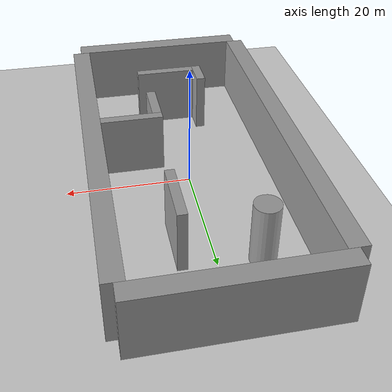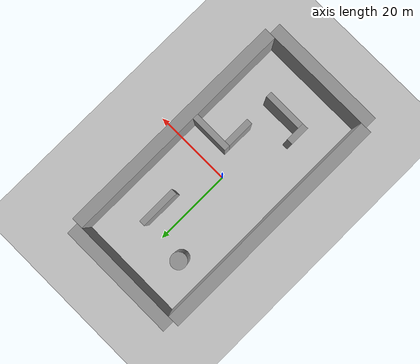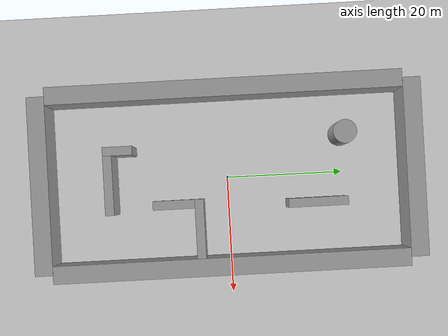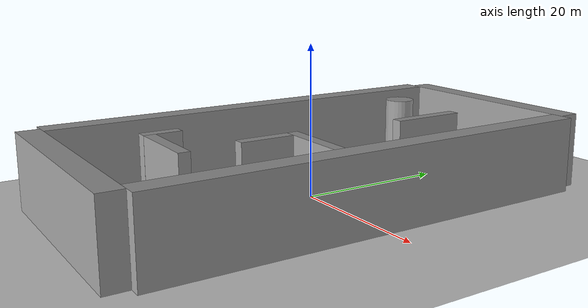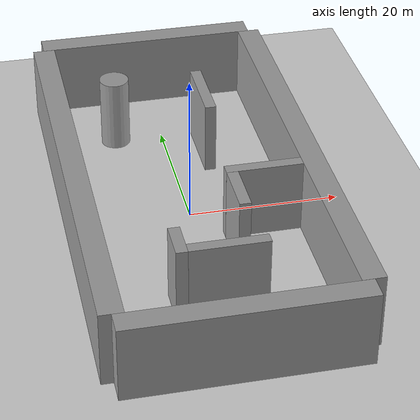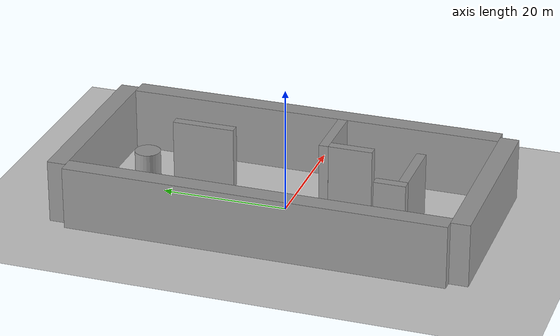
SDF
<sdf version="1.6">
 <world name="vrc_task_1">
  <scene><ambient>0.4 0.4 0.4 1</ambient><background>0.7 0.7 0.7 1</background><shadows>1</shadows></scene>
  <physics name="default_physics" default="0" type="ode">
   <ode>
    <solver>
     <type>quick</type>
     <iters>10</iters>
     <sor>1</sor>
     <use_dynamic_moi_rescaling>0</use_dynamic_moi_rescaling>
    </solver>
    <constraints>
     <cfm>0</cfm>
     <erp>0.2</erp>
     <contact_max_correcting_vel>100</contact_max_correcting_vel>
     <contact_surface_layer>0.001</contact_surface_layer>
    </constraints>
   </ode>
   <max_step_size>0.004</max_step_size>
   <real_time_factor>1</real_time_factor>
   <real_time_update_rate>250</real_time_update_rate>
  </physics>
  <light name="sun" type="directional">
   <pose>0 0 10 0 -0 0</pose>
   <diffuse>0.8 0.8 0.8 1</diffuse>
   <specular>0.2 0.2 0.2 1</specular>
   <attenuation>
    <range>1000</range>
    <constant>0.9</constant>
    <linear>0.01</linear>
    <quadratic>0.001</quadratic>
   </attenuation>
   <direction>-0.5 0.1 -0.9</direction>
  </light>
  <gravity>0 0 -9.8066</gravity>
  <magnetic_field>6e-06 2.3e-05 -4.2e-05</magnetic_field>
  <atmosphere type="adiabatic"/>
  <audio><device>default</device></audio>
  <spherical_coordinates>
   <surface_model>EARTH_WGS84</surface_model>
   <latitude_deg>0</latitude_deg>
   <longitude_deg>0</longitude_deg>
   <elevation>0</elevation>
   <heading_deg>0</heading_deg>
  </spherical_coordinates>
  <model name="ground_plane">
   <static>1</static>
   <link name="link">
    <collision name="collision">
     <geometry><plane><normal>0 0 1</normal><size>100 100</size></plane></geometry>
     <surface><friction><ode><mu>100</mu><mu2>50</mu2></ode></friction></surface>
    </collision>
    <visual name="visual">
     <cast_shadows>0</cast_shadows>
     <geometry><plane><normal>0 0 1</normal><size>100 100</size></plane></geometry>
     <material>
      <script><uri>file://media/materials/scripts/gazebo.material</uri><name>Gazebo/Grey</name></script>
     </material>
    </visual>
   </link>
   <pose>2.41675 -0.571224 0 0 -0 0</pose>
  </model>
  <model name="Box_2">
   <link name="link_0">
    <inertial>
     <mass>1800</mass>
     <inertia><ixx>16350</ixx><ixy>0</ixy><ixz>0</ixz><iyy>555000</iyy><iyz>0</iyz><izz>541350</izz></inertia>
    </inertial>
    <pose>15 -0 -0 0 -0 1.57</pose>
    <visual name="visual">
     <geometry><box><size>60 3 10</size></box></geometry>
     <material>
      <lighting>1</lighting>
      <script><uri>file://media/materials/scripts/gazebo.material</uri><name>Gazebo/Grey</name></script>
      <shader type="vertex"><normal_map>__default__</normal_map></shader>
      <ambient>0.3 0.3 0.3 1</ambient>
      <diffuse>0.7 0.7 0.7 1</diffuse>
      <specular>0.01 0.01 0.01 1</specular>
      <emissive>0 0 0 1</emissive>
     </material>
    </visual>
    <collision name="collision">
     <geometry><box><size>60 3 10</size></box></geometry>
     <surface>
      <friction>
       <ode><mu>1</mu><mu2>1</mu2><fdir1>0 0 0</fdir1><slip1>0</slip1><slip2>0</slip2></ode>
       <torsional>
        <coefficient>1</coefficient>
        <patch_radius>0</patch_radius>
        <surface_radius>0</surface_radius>
        <use_patch_radius>1</use_patch_radius>
        <ode><slip>0</slip></ode>
       </torsional>
      </friction>
      <bounce><restitution_coefficient>0</restitution_coefficient><threshold>1e+06</threshold></bounce>
      <contact>
       <collide_without_contact>0</collide_without_contact>
       <collide_without_contact_bitmask>1</collide_without_contact_bitmask>
       <collide_bitmask>1</collide_bitmask>
       <ode>
        <soft_cfm>0</soft_cfm>
        <soft_erp>0.2</soft_erp>
        <kp>1e+13</kp>
        <kd>1</kd>
        <max_vel>0.01</max_vel>
        <min_depth>0</min_depth>
       </ode>
       <bullet>
        <split_impulse>1</split_impulse>
        <split_impulse_penetration_threshold>-0.01</split_impulse_penetration_threshold>
        <soft_cfm>0</soft_cfm>
        <soft_erp>0.2</soft_erp>
        <kp>1e+13</kp>
        <kd>1</kd>
       </bullet>
      </contact>
     </surface>
    </collision>
   </link>
   <link name="link_0_clone">
    <inertial>
     <mass>1800</mass>
     <inertia><ixx>16350</ixx><ixy>0</ixy><ixz>0</ixz><iyy>555000</iyy><iyz>0</iyz><izz>541350</izz></inertia>
    </inertial>
    <pose>-15 -0 0 0 -0 1.57</pose>
    <visual name="visual">
     <geometry><box><size>60 3 10</size></box></geometry>
     <material>
      <lighting>1</lighting>
      <script><uri>file://media/materials/scripts/gazebo.material</uri><name>Gazebo/Grey</name></script>
      <shader type="vertex"><normal_map>__default__</normal_map></shader>
      <ambient>0.3 0.3 0.3 1</ambient>
      <diffuse>0.7 0.7 0.7 1</diffuse>
      <specular>0.01 0.01 0.01 1</specular>
      <emissive>0 0 0 1</emissive>
     </material>
    </visual>
    <collision name="collision">
     <geometry><box><size>60 3 10</size></box></geometry>
     <surface>
      <friction>
       <ode><mu>1</mu><mu2>1</mu2><fdir1>0 0 0</fdir1><slip1>0</slip1><slip2>0</slip2></ode>
       <torsional>
        <coefficient>1</coefficient>
        <patch_radius>0</patch_radius>
        <surface_radius>0</surface_radius>
        <use_patch_radius>1</use_patch_radius>
        <ode><slip>0</slip></ode>
       </torsional>
      </friction>
      <bounce><restitution_coefficient>0</restitution_coefficient><threshold>1e+06</threshold></bounce>
      <contact>
       <collide_without_contact>0</collide_without_contact>
       <collide_without_contact_bitmask>1</collide_without_contact_bitmask>
       <collide_bitmask>1</collide_bitmask>
       <ode>
        <soft_cfm>0</soft_cfm>
        <soft_erp>0.2</soft_erp>
        <kp>1e+13</kp>
        <kd>1</kd>
        <max_vel>0.01</max_vel>
        <min_depth>0</min_depth>
       </ode>
       <bullet>
        <split_impulse>1</split_impulse>
        <split_impulse_penetration_threshold>-0.01</split_impulse_penetration_threshold>
        <soft_cfm>0</soft_cfm>
        <soft_erp>0.2</soft_erp>
        <kp>1e+13</kp>
        <kd>1</kd>
       </bullet>
      </contact>
     </surface>
    </collision>
   </link>
   <link name="link_1">
    <inertial>
     <mass>900</mass>
     <inertia><ixx>75000</ixx><ixy>0</ixy><ixz>0</ixz><iyy>8175</iyy><iyz>0</iyz><izz>68175</izz></inertia>
    </inertial>
    <pose>-0 -31.5 0 0 -0 1.57</pose>
    <visual name="visual">
     <geometry><box><size>3 30 10</size></box></geometry>
     <material>
      <lighting>1</lighting>
      <script><uri>file://media/materials/scripts/gazebo.material</uri><name>Gazebo/Grey</name></script>
      <shader type="vertex"><normal_map>__default__</normal_map></shader>
      <ambient>0.3 0.3 0.3 1</ambient>
      <diffuse>0.7 0.7 0.7 1</diffuse>
      <specular>0.01 0.01 0.01 1</specular>
      <emissive>0 0 0 1</emissive>
     </material>
    </visual>
    <collision name="collision">
     <geometry><box><size>3 30 10</size></box></geometry>
     <surface>
      <friction>
       <ode><mu>1</mu><mu2>1</mu2><fdir1>0 0 0</fdir1><slip1>0</slip1><slip2>0</slip2></ode>
       <torsional>
        <coefficient>1</coefficient>
        <patch_radius>0</patch_radius>
        <surface_radius>0</surface_radius>
        <use_patch_radius>1</use_patch_radius>
        <ode><slip>0</slip></ode>
       </torsional>
      </friction>
      <bounce><restitution_coefficient>0</restitution_coefficient><threshold>1e+06</threshold></bounce>
      <contact>
       <collide_without_contact>0</collide_without_contact>
       <collide_without_contact_bitmask>1</collide_without_contact_bitmask>
       <collide_bitmask>1</collide_bitmask>
       <ode>
        <soft_cfm>0</soft_cfm>
        <soft_erp>0.2</soft_erp>
        <kp>1e+13</kp>
        <kd>1</kd>
        <max_vel>0.01</max_vel>
        <min_depth>0</min_depth>
       </ode>
       <bullet>
        <split_impulse>1</split_impulse>
        <split_impulse_penetration_threshold>-0.01</split_impulse_penetration_threshold>
        <soft_cfm>0</soft_cfm>
        <soft_erp>0.2</soft_erp>
        <kp>1e+13</kp>
        <kd>1</kd>
       </bullet>
      </contact>
     </surface>
    </collision>
   </link>
   <link name="link_1_clone">
    <inertial>
     <mass>900</mass>
     <inertia><ixx>75000</ixx><ixy>0</ixy><ixz>0</ixz><iyy>8175</iyy><iyz>0</iyz><izz>68175</izz></inertia>
    </inertial>
    <pose>0 31.5 -0 0 -0 1.57</pose>
    <visual name="visual">
     <geometry><box><size>3 30 10</size></box></geometry>
     <material>
      <lighting>1</lighting>
      <script><uri>file://media/materials/scripts/gazebo.material</uri><name>Gazebo/Grey</name></script>
      <shader type="vertex"><normal_map>__default__</normal_map></shader>
      <ambient>0.3 0.3 0.3 1</ambient>
      <diffuse>0.7 0.7 0.7 1</diffuse>
      <specular>0.01 0.01 0.01 1</specular>
      <emissive>0 0 0 1</emissive>
     </material>
    </visual>
    <collision name="collision">
     <geometry><box><size>3 30 10</size></box></geometry>
     <surface>
      <friction>
       <ode><mu>1</mu><mu2>1</mu2><fdir1>0 0 0</fdir1><slip1>0</slip1><slip2>0</slip2></ode>
       <torsional>
        <coefficient>1</coefficient>
        <patch_radius>0</patch_radius>
        <surface_radius>0</surface_radius>
        <use_patch_radius>1</use_patch_radius>
        <ode><slip>0</slip></ode>
       </torsional>
      </friction>
      <bounce><restitution_coefficient>0</restitution_coefficient><threshold>1e+06</threshold></bounce>
      <contact>
       <collide_without_contact>0</collide_without_contact>
       <collide_without_contact_bitmask>1</collide_without_contact_bitmask>
       <collide_bitmask>1</collide_bitmask>
       <ode>
        <soft_cfm>0</soft_cfm>
        <soft_erp>0.2</soft_erp>
        <kp>1e+13</kp>
        <kd>1</kd>
        <max_vel>0.01</max_vel>
        <min_depth>0</min_depth>
       </ode>
       <bullet>
        <split_impulse>1</split_impulse>
        <split_impulse_penetration_threshold>-0.01</split_impulse_penetration_threshold>
        <soft_cfm>0</soft_cfm>
        <soft_erp>0.2</soft_erp>
        <kp>1e+13</kp>
        <kd>1</kd>
       </bullet>
      </contact>
     </surface>
    </collision>
   </link>
   <link name="link_2">
    <inertial>
     <mass>150.796</mass>
     <inertia><ixx>1407.43</ixx><ixy>0</ixy><ixz>0</ixz><iyy>1407.43</iyy><iyz>0</iyz><izz>301.593</izz></inertia>
    </inertial>
    <pose>-6.5 20 0 3e-06 -0 3e-06</pose>
    <visual name="visual">
     <geometry><cylinder><radius>2</radius><length>10</length></cylinder></geometry>
     <material>
      <lighting>1</lighting>
      <script><uri>file://media/materials/scripts/gazebo.material</uri><name>Gazebo/Grey</name></script>
      <shader type="vertex"><normal_map>__default__</normal_map></shader>
      <ambient>0.3 0.3 0.3 1</ambient>
      <diffuse>0.7 0.7 0.7 1</diffuse>
      <specular>0.01 0.01 0.01 1</specular>
      <emissive>0 0 0 1</emissive>
     </material>
    </visual>
    <collision name="collision">
     <geometry><cylinder><radius>2</radius><length>10</length></cylinder></geometry>
     <surface>
      <friction>
       <ode><mu>1</mu><mu2>1</mu2><fdir1>0 0 0</fdir1><slip1>0</slip1><slip2>0</slip2></ode>
       <torsional>
        <coefficient>1</coefficient>
        <patch_radius>0</patch_radius>
        <surface_radius>0</surface_radius>
        <use_patch_radius>1</use_patch_radius>
        <ode><slip>0</slip></ode>
       </torsional>
      </friction>
      <bounce><restitution_coefficient>0</restitution_coefficient><threshold>1e+06</threshold></bounce>
      <contact>
       <collide_without_contact>0</collide_without_contact>
       <collide_without_contact_bitmask>1</collide_without_contact_bitmask>
       <collide_bitmask>1</collide_bitmask>
       <ode>
        <soft_cfm>0</soft_cfm>
        <soft_erp>0.2</soft_erp>
        <kp>1e+13</kp>
        <kd>1</kd>
        <max_vel>0.01</max_vel>
        <min_depth>0</min_depth>
       </ode>
       <bullet>
        <split_impulse>1</split_impulse>
        <split_impulse_penetration_threshold>-0.01</split_impulse_penetration_threshold>
        <soft_cfm>0</soft_cfm>
        <soft_erp>0.2</soft_erp>
        <kp>1e+13</kp>
        <kd>1</kd>
       </bullet>
      </contact>
     </surface>
    </collision>
   </link>
   <link name="link_3">
    <inertial>
     <mass>150</mass>
     <inertia><ixx>1278.12</ixx><ixy>0</ixy><ixz>0</ixz><iyy>2500</iyy><iyz>0</iyz><izz>1278.12</izz></inertia>
    </inertial>
    <pose>5 15 -0 3e-06 -0 1.57</pose>
    <visual name="visual">
     <geometry><box><size>10 1.5 10</size></box></geometry>
     <material>
      <lighting>1</lighting>
      <script><uri>file://media/materials/scripts/gazebo.material</uri><name>Gazebo/Grey</name></script>
      <shader type="vertex"><normal_map>__default__</normal_map></shader>
      <ambient>0.3 0.3 0.3 1</ambient>
      <diffuse>0.7 0.7 0.7 1</diffuse>
      <specular>0.01 0.01 0.01 1</specular>
      <emissive>0 0 0 1</emissive>
     </material>
    </visual>
    <collision name="collision">
     <geometry><box><size>10 1.5 10</size></box></geometry>
     <surface>
      <friction>
       <ode><mu>1</mu><mu2>1</mu2><fdir1>0 0 0</fdir1><slip1>0</slip1><slip2>0</slip2></ode>
       <torsional>
        <coefficient>1</coefficient>
        <patch_radius>0</patch_radius>
        <surface_radius>0</surface_radius>
        <use_patch_radius>1</use_patch_radius>
        <ode><slip>0</slip></ode>
       </torsional>
      </friction>
      <bounce><restitution_coefficient>0</restitution_coefficient><threshold>1e+06</threshold></bounce>
      <contact>
       <collide_without_contact>0</collide_without_contact>
       <collide_without_contact_bitmask>1</collide_without_contact_bitmask>
       <collide_bitmask>1</collide_bitmask>
       <ode>
        <soft_cfm>0</soft_cfm>
        <soft_erp>0.2</soft_erp>
        <kp>1e+13</kp>
        <kd>1</kd>
        <max_vel>0.01</max_vel>
        <min_depth>0</min_depth>
       </ode>
       <bullet>
        <split_impulse>1</split_impulse>
        <split_impulse_penetration_threshold>-0.01</split_impulse_penetration_threshold>
        <soft_cfm>0</soft_cfm>
        <soft_erp>0.2</soft_erp>
        <kp>1e+13</kp>
        <kd>1</kd>
       </bullet>
      </contact>
     </surface>
    </collision>
   </link>
   <link name="link_4">
    <inertial>
     <mass>150</mass>
     <inertia><ixx>2500</ixx><ixy>0</ixy><ixz>0</ixz><iyy>1278.12</iyy><iyz>0</iyz><izz>1278.12</izz></inertia>
    </inertial>
    <pose>8.5 -5 0 0 -0 1.57</pose>
    <visual name="visual">
     <geometry><box><size>1.5 10 10</size></box></geometry>
     <material>
      <lighting>1</lighting>
      <script><uri>file://media/materials/scripts/gazebo.material</uri><name>Gazebo/Grey</name></script>
      <shader type="vertex"><normal_map>__default__</normal_map></shader>
      <ambient>0.3 0.3 0.3 1</ambient>
      <diffuse>0.7 0.7 0.7 1</diffuse>
      <specular>0.01 0.01 0.01 1</specular>
      <emissive>0 0 0 1</emissive>
     </material>
    </visual>
    <collision name="collision">
     <geometry><box><size>1.5 10 10</size></box></geometry>
     <surface>
      <friction>
       <ode><mu>1</mu><mu2>1</mu2><fdir1>0 0 0</fdir1><slip1>0</slip1><slip2>0</slip2></ode>
       <torsional>
        <coefficient>1</coefficient>
        <patch_radius>0</patch_radius>
        <surface_radius>0</surface_radius>
        <use_patch_radius>1</use_patch_radius>
        <ode><slip>0</slip></ode>
       </torsional>
      </friction>
      <bounce><restitution_coefficient>0</restitution_coefficient><threshold>1e+06</threshold></bounce>
      <contact>
       <collide_without_contact>0</collide_without_contact>
       <collide_without_contact_bitmask>1</collide_without_contact_bitmask>
       <collide_bitmask>1</collide_bitmask>
       <ode>
        <soft_cfm>0</soft_cfm>
        <soft_erp>0.2</soft_erp>
        <kp>1e+13</kp>
        <kd>1</kd>
        <max_vel>0.01</max_vel>
        <min_depth>0</min_depth>
       </ode>
       <bullet>
        <split_impulse>1</split_impulse>
        <split_impulse_penetration_threshold>-0.01</split_impulse_penetration_threshold>
        <soft_cfm>0</soft_cfm>
        <soft_erp>0.2</soft_erp>
        <kp>1e+13</kp>
        <kd>1</kd>
       </bullet>
      </contact>
     </surface>
    </collision>
   </link>
   <link name="link_6">
    <inertial>
     <mass>105</mass>
     <inertia><ixx>894.688</ixx><ixy>0</ixy><ixz>0</ixz><iyy>1303.75</iyy><iyz>0</iyz><izz>448.438</izz></inertia>
    </inertial>
    <pose>4.25 -9.25 0 3e-06 -0 1.57</pose>
    <visual name="visual">
     <geometry><box><size>7 1.5 10</size></box></geometry>
     <material>
      <lighting>1</lighting>
      <script><uri>file://media/materials/scripts/gazebo.material</uri><name>Gazebo/Grey</name></script>
      <shader type="vertex"><normal_map>__default__</normal_map></shader>
      <ambient>0.3 0.3 0.3 1</ambient>
      <diffuse>0.7 0.7 0.7 1</diffuse>
      <specular>0.01 0.01 0.01 1</specular>
      <emissive>0 0 0 1</emissive>
     </material>
    </visual>
    <collision name="collision">
     <geometry><box><size>7 1.5 10</size></box></geometry>
     <surface>
      <friction>
       <ode><mu>1</mu><mu2>1</mu2><fdir1>0 0 0</fdir1><slip1>0</slip1><slip2>0</slip2></ode>
       <torsional>
        <coefficient>1</coefficient>
        <patch_radius>0</patch_radius>
        <surface_radius>0</surface_radius>
        <use_patch_radius>1</use_patch_radius>
        <ode><slip>0</slip></ode>
       </torsional>
      </friction>
      <bounce><restitution_coefficient>0</restitution_coefficient><threshold>1e+06</threshold></bounce>
      <contact>
       <collide_without_contact>0</collide_without_contact>
       <collide_without_contact_bitmask>1</collide_without_contact_bitmask>
       <collide_bitmask>1</collide_bitmask>
       <ode>
        <soft_cfm>0</soft_cfm>
        <soft_erp>0.2</soft_erp>
        <kp>1e+13</kp>
        <kd>1</kd>
        <max_vel>0.01</max_vel>
        <min_depth>0</min_depth>
       </ode>
       <bullet>
        <split_impulse>1</split_impulse>
        <split_impulse_penetration_threshold>-0.01</split_impulse_penetration_threshold>
        <soft_cfm>0</soft_cfm>
        <soft_erp>0.2</soft_erp>
        <kp>1e+13</kp>
        <kd>1</kd>
       </bullet>
      </contact>
     </surface>
    </collision>
   </link>
   <link name="link_7">
    <inertial>
     <mass>150</mass>
     <inertia><ixx>2500</ixx><ixy>0</ixy><ixz>0</ixz><iyy>1278.12</iyy><iyz>0</iyz><izz>1278.12</izz></inertia>
    </inertial>
    <pose>0.500001 -20 -0 3e-06 -0 1.57</pose>
    <visual name="visual">
     <geometry><box><size>1.5 10 10</size></box></geometry>
     <material>
      <lighting>1</lighting>
      <script><uri>file://media/materials/scripts/gazebo.material</uri><name>Gazebo/Grey</name></script>
      <shader type="vertex"><normal_map>__default__</normal_map></shader>
      <ambient>0.3 0.3 0.3 1</ambient>
      <diffuse>0.7 0.7 0.7 1</diffuse>
      <specular>0.01 0.01 0.01 1</specular>
      <emissive>0 0 0 1</emissive>
     </material>
    </visual>
    <collision name="collision">
     <geometry><box><size>1.5 10 10</size></box></geometry>
     <surface>
      <friction>
       <ode><mu>1</mu><mu2>1</mu2><fdir1>0 0 0</fdir1><slip1>0</slip1><slip2>0</slip2></ode>
       <torsional>
        <coefficient>1</coefficient>
        <patch_radius>0</patch_radius>
        <surface_radius>0</surface_radius>
        <use_patch_radius>1</use_patch_radius>
        <ode><slip>0</slip></ode>
       </torsional>
      </friction>
      <bounce><restitution_coefficient>0</restitution_coefficient><threshold>1e+06</threshold></bounce>
      <contact>
       <collide_without_contact>0</collide_without_contact>
       <collide_without_contact_bitmask>1</collide_without_contact_bitmask>
       <collide_bitmask>1</collide_bitmask>
       <ode>
        <soft_cfm>0</soft_cfm>
        <soft_erp>0.2</soft_erp>
        <kp>1e+13</kp>
        <kd>1</kd>
        <max_vel>0.01</max_vel>
        <min_depth>0</min_depth>
       </ode>
       <bullet>
        <split_impulse>1</split_impulse>
        <split_impulse_penetration_threshold>-0.01</split_impulse_penetration_threshold>
        <soft_cfm>0</soft_cfm>
        <soft_erp>0.2</soft_erp>
        <kp>1e+13</kp>
        <kd>1</kd>
       </bullet>
      </contact>
     </surface>
    </collision>
   </link>
   <link name="link_8">
    <inertial>
     <mass>75</mass>
     <inertia><ixx>639.062</ixx><ixy>0</ixy><ixz>0</ixz><iyy>781.25</iyy><iyz>0</iyz><izz>170.312</izz></inertia>
    </inertial>
    <pose>-5.25 -18.25 -0 0 -0 1.57</pose>
    <visual name="visual">
     <geometry><box><size>5 1.5 10</size></box></geometry>
     <material>
      <lighting>1</lighting>
      <script><uri>file://media/materials/scripts/gazebo.material</uri><name>Gazebo/Grey</name></script>
      <shader type="vertex"><normal_map>__default__</normal_map></shader>
      <ambient>0.3 0.3 0.3 1</ambient>
      <diffuse>0.7 0.7 0.7 1</diffuse>
      <specular>0.01 0.01 0.01 1</specular>
      <emissive>0 0 0 1</emissive>
     </material>
    </visual>
    <collision name="collision">
     <geometry><box><size>5 1.5 10</size></box></geometry>
     <surface>
      <friction>
       <ode><mu>1</mu><mu2>1</mu2><fdir1>0 0 0</fdir1><slip1>0</slip1><slip2>0</slip2></ode>
       <torsional>
        <coefficient>1</coefficient>
        <patch_radius>0</patch_radius>
        <surface_radius>0</surface_radius>
        <use_patch_radius>1</use_patch_radius>
        <ode><slip>0</slip></ode>
       </torsional>
      </friction>
      <bounce><restitution_coefficient>0</restitution_coefficient><threshold>1e+06</threshold></bounce>
      <contact>
       <collide_without_contact>0</collide_without_contact>
       <collide_without_contact_bitmask>1</collide_without_contact_bitmask>
       <collide_bitmask>1</collide_bitmask>
       <ode>
        <soft_cfm>0</soft_cfm>
        <soft_erp>0.2</soft_erp>
        <kp>1e+13</kp>
        <kd>1</kd>
        <max_vel>0.01</max_vel>
        <min_depth>0</min_depth>
       </ode>
       <bullet>
        <split_impulse>1</split_impulse>
        <split_impulse_penetration_threshold>-0.01</split_impulse_penetration_threshold>
        <soft_cfm>0</soft_cfm>
        <soft_erp>0.2</soft_erp>
        <kp>1e+13</kp>
        <kd>1</kd>
       </bullet>
      </contact>
     </surface>
    </collision>
   </link>
   <static>0</static>
   <pose>-9e-05 3e-05 4.99995 -0 -3e-06 -9e-06</pose>
  </model>
 </world>
</sdf>
